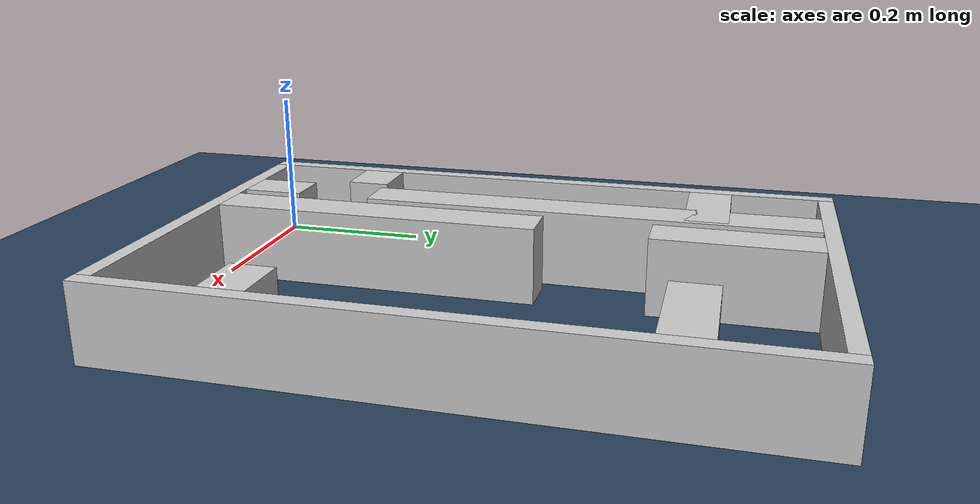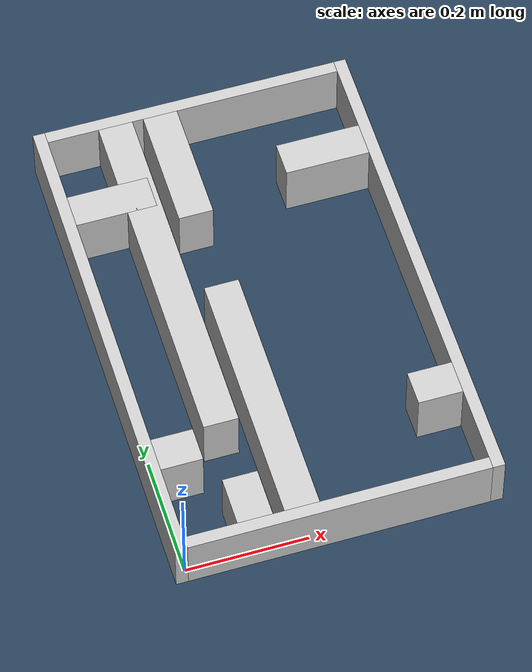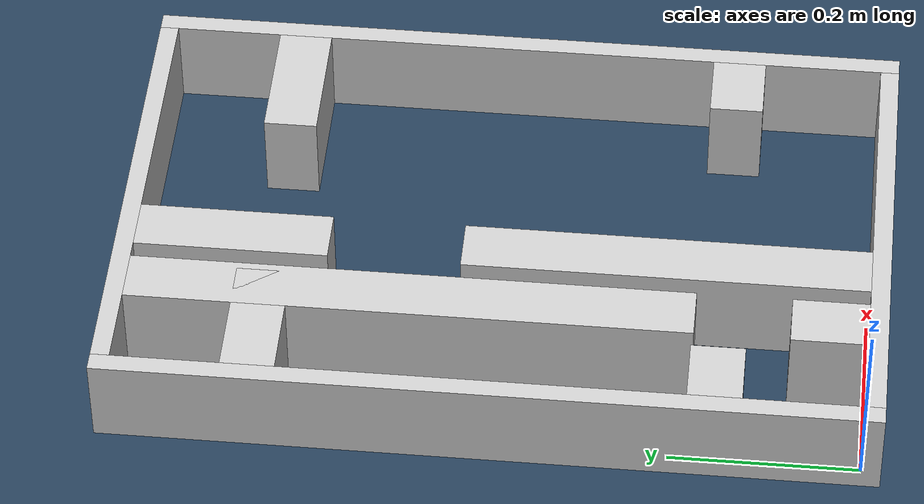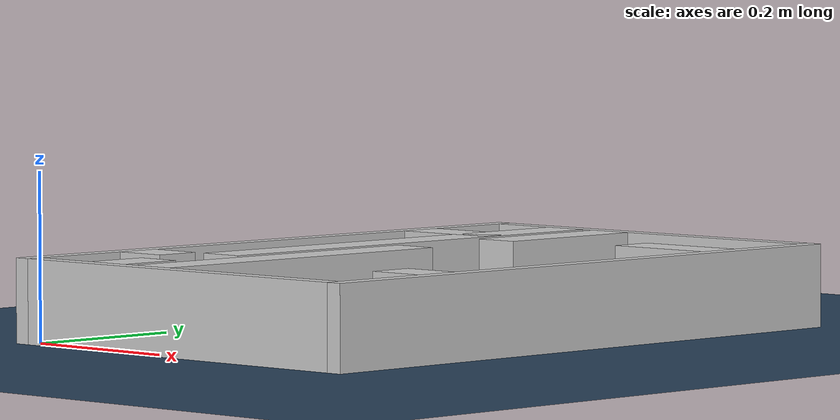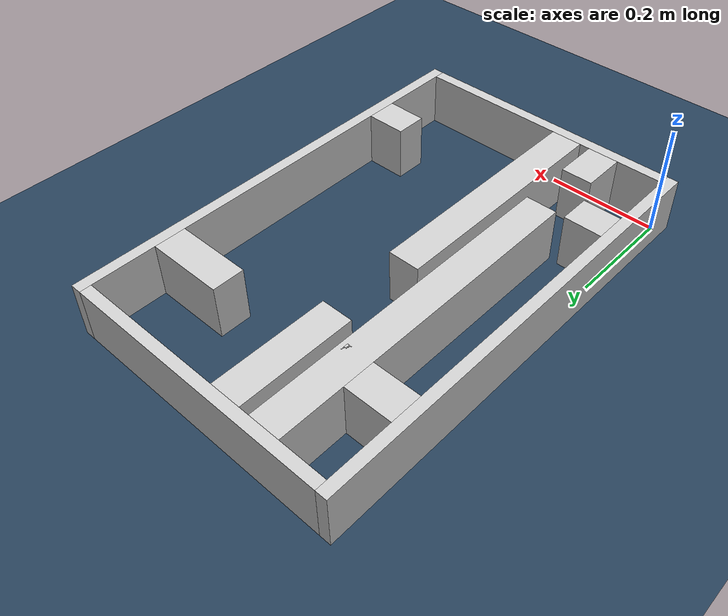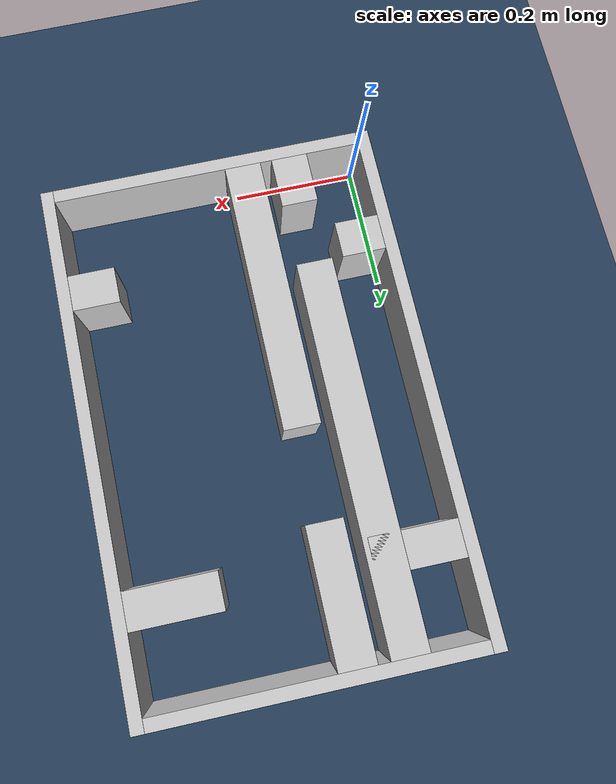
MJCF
<?xml version="1.0" ?>
<mujoco model="generated_real_template">
  <compiler angle="degree"/>
  <option timestep="0.002" integrator="implicitfast" iterations="100" cone="elliptic"/>
  <default>
    <geom density="1"/>
  </default>
  <asset>
    <texture builtin="gradient" height="3072" rgb1="0.3 0.5 0.7" rgb2="0 0 0" type="skybox" width="512"/>
    <texture builtin="checker" height="300" mark="edge" markrgb="0.8 0.8 0.8" name="groundplane" rgb1="0.2 0.3 0.4" rgb2="0.1 0.2 0.3" type="2d" width="300"/>
    <material name="groundplane" reflectance="0.2" texrepeat="5 5" texture="groundplane" texuniform="true"/>
  </asset>
  <worldbody>
    <light dir="0 0 -1" directional="true" pos="0 0 1.5"/>
    <geom name="floor" type="plane" condim="4" friction="0.5 0.005 0.001" material="groundplane" size="0 0 0.05"/>
    <body name="walls">
      <geom name="wall_boundary_left" type="box" condim="4" friction="1.0 0.005 0.0001" rgba="0.8 0.8 0.8 1" pos="-0.010000 0.387500 0.050000" euler="0 0 0.000000" size="0.010000 0.407500 0.050000"/>
      <geom name="wall_boundary_right" type="box" condim="4" friction="1.0 0.005 0.0001" rgba="0.8 0.8 0.8 1" pos="0.500000 0.387500 0.050000" euler="0 0 0.000000" size="0.010000 0.407500 0.050000"/>
      <geom name="wall_boundary_bottom" type="box" condim="4" friction="1.0 0.005 0.0001" rgba="0.8 0.8 0.8 1" pos="0.245000 -0.010000 0.050000" euler="0 0 0.000000" size="0.245000 0.010000 0.050000"/>
      <geom name="wall_boundary_top" type="box" condim="4" friction="1.0 0.005 0.0001" rgba="0.8 0.8 0.8 1" pos="0.245000 0.785000 0.050000" euler="0 0 0.000000" size="0.245000 0.010000 0.050000"/>
      <geom name="wall_inner_1_1" type="box" condim="4" friction="1.0 0.005 0.0001" rgba="0.8 0.8 0.8 1" pos="0.188541 0.214686 0.050000" euler="0 0 90.000000" size="0.214686 0.028500 0.050000"/>
      <geom name="wall_inner_1_2" type="box" condim="4" friction="1.0 0.005 0.0001" rgba="0.8 0.8 0.8 1" pos="0.188541 0.672196 0.050000" euler="0 0 90.000000" size="0.102804 0.028500 0.050000"/>
      <geom name="wall_inner_2_1" type="box" condim="4" friction="1.0 0.005 0.0001" rgba="0.8 0.8 0.8 1" pos="0.034115 0.154127 0.050000" euler="0 0 0.000000" size="0.034115 0.028500 0.050000"/>
      <geom name="wall_inner_2_2" type="box" condim="4" friction="1.0 0.005 0.0001" rgba="0.8 0.8 0.8 1" pos="0.453501 0.154127 0.050000" euler="0 0 0.000000" size="0.036499 0.028500 0.050000"/>
      <geom name="wall_inner_3_1" type="box" condim="4" friction="1.0 0.005 0.0001" rgba="0.8 0.8 0.8 1" pos="0.066865 0.632977 0.050000" euler="0 0 0.000000" size="0.066865 0.028500 0.050000"/>
      <geom name="wall_inner_3_2" type="box" condim="4" friction="1.0 0.005 0.0001" rgba="0.8 0.8 0.8 1" pos="0.420300 0.632977 0.050000" euler="0 0 0.000000" size="0.069700 0.028500 0.050000"/>
      <geom name="wall_inner_4_1" type="box" condim="4" friction="1.0 0.005 0.0001" rgba="0.8 0.8 0.8 1" pos="0.113337 0.040414 0.050000" euler="0 0 90.000000" size="0.040414 0.028500 0.050000"/>
      <geom name="wall_inner_4_2" type="box" condim="4" friction="1.0 0.005 0.0001" rgba="0.8 0.8 0.8 1" pos="0.113337 0.477794 0.050000" euler="0 0 90.000000" size="0.297206 0.028500 0.050000"/>
    </body>
  </worldbody>
</mujoco>
